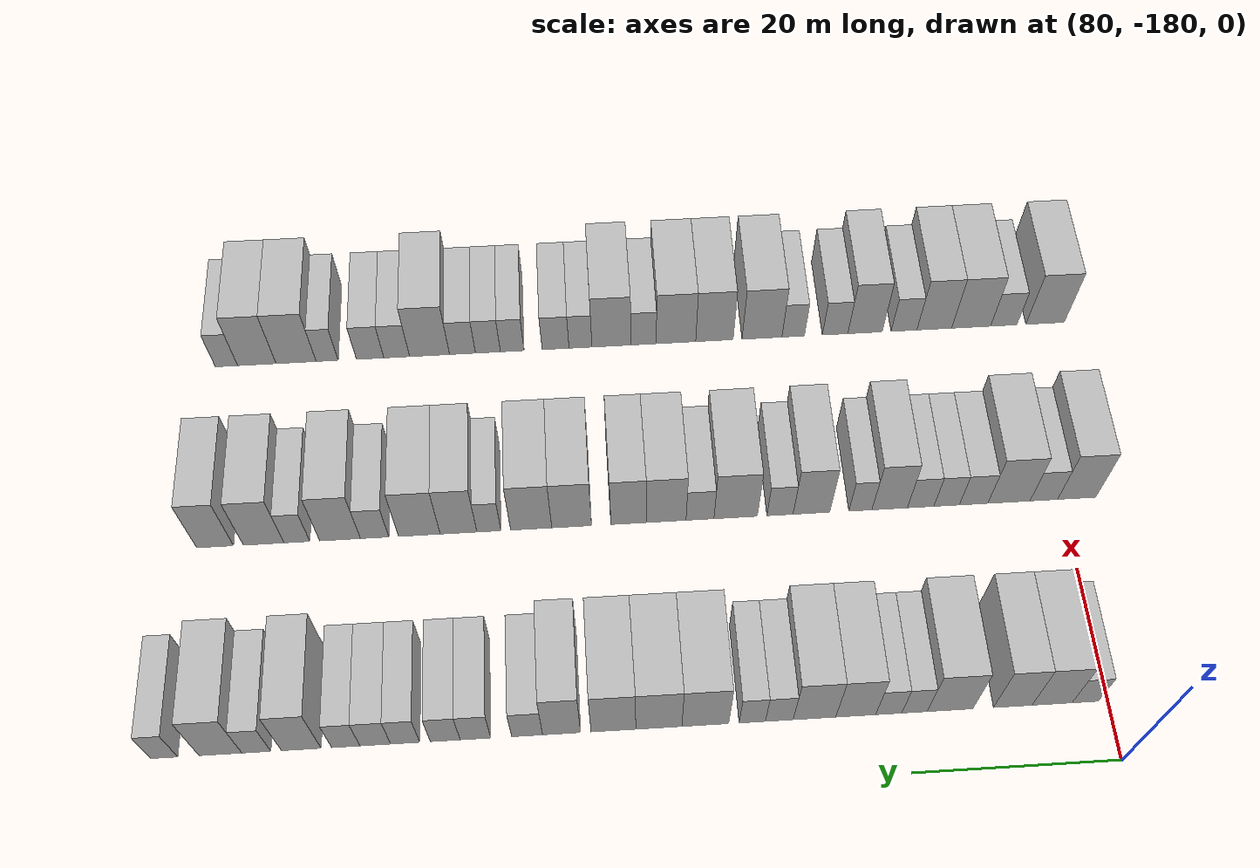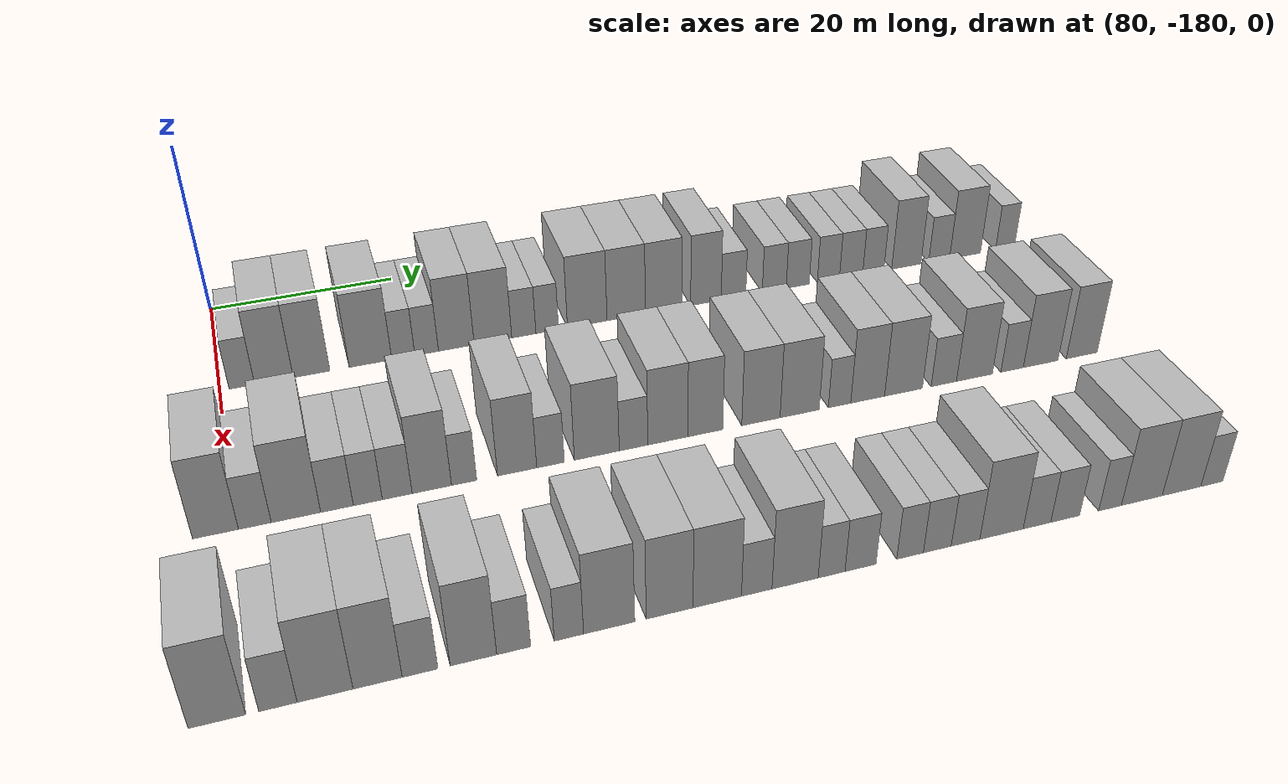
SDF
<sdf version="1.6">
 <world name="default">
  <model name="building_635">
   <static>1</static>
   <pose>91.0000 -177.7796 0 0.000000 0.000000 0.000000</pose>
   <link name="link">
    <pose>0 0 3.00 0 0 0</pose>
    <collision name="collision"><geometry><box><size>10.0000 2.5590 6.0000</size></box></geometry></collision>
    <visual name="visual">
     <cast_shadows>0</cast_shadows>
     <geometry><box><size>10.0000 2.5590 6.0000</size></box></geometry>
     <material>
      <script>
       <uri>model://HANNAS_wall/materials/scripts</uri>
       <uri>model://HANNAS_wall/materials/textures</uri>
       <name>vrc/HANNAS_wall</name>
      </script>
     </material>
    </visual>
   </link>
  </model>
  <model name="building_636">
   <static>1</static>
   <pose>91.0000 -174.5470 0 0.000000 0.000000 0.000000</pose>
   <link name="link">
    <pose>0 0 4.50 0 0 0</pose>
    <collision name="collision"><geometry><box><size>10.0000 3.9061 9.0000</size></box></geometry></collision>
    <visual name="visual">
     <cast_shadows>0</cast_shadows>
     <geometry><box><size>10.0000 3.9061 9.0000</size></box></geometry>
     <material>
      <script>
       <uri>model://HANNAS_wall/materials/scripts</uri>
       <uri>model://HANNAS_wall/materials/textures</uri>
       <name>vrc/HANNAS_wall</name>
      </script>
     </material>
    </visual>
   </link>
  </model>
  <model name="building_637">
   <static>1</static>
   <pose>91.0000 -170.7109 0 0.000000 0.000000 0.000000</pose>
   <link name="link">
    <pose>0 0 4.50 0 0 0</pose>
    <collision name="collision"><geometry><box><size>10.0000 3.7660 9.0000</size></box></geometry></collision>
    <visual name="visual">
     <cast_shadows>0</cast_shadows>
     <geometry><box><size>10.0000 3.7660 9.0000</size></box></geometry>
     <material>
      <script>
       <uri>model://HANNAS_wall/materials/scripts</uri>
       <uri>model://HANNAS_wall/materials/textures</uri>
       <name>vrc/HANNAS_wall</name>
      </script>
     </material>
    </visual>
   </link>
  </model>
  <model name="building_638">
   <static>1</static>
   <pose>91.0000 -164.5962 0 0.000000 0.000000 0.000000</pose>
   <link name="link">
    <pose>0 0 4.50 0 0 0</pose>
    <collision name="collision"><geometry><box><size>10.0000 4.4635 9.0000</size></box></geometry></collision>
    <visual name="visual">
     <cast_shadows>0</cast_shadows>
     <geometry><box><size>10.0000 4.4635 9.0000</size></box></geometry>
     <material>
      <script>
       <uri>model://HANNAS_wall/materials/scripts</uri>
       <uri>model://HANNAS_wall/materials/textures</uri>
       <name>vrc/HANNAS_wall</name>
      </script>
     </material>
    </visual>
   </link>
  </model>
  <model name="building_639">
   <static>1</static>
   <pose>91.0000 -161.1391 0 0.000000 0.000000 0.000000</pose>
   <link name="link">
    <pose>0 0 3.00 0 0 0</pose>
    <collision name="collision"><geometry><box><size>10.0000 2.4507 6.0000</size></box></geometry></collision>
    <visual name="visual">
     <cast_shadows>0</cast_shadows>
     <geometry><box><size>10.0000 2.4507 6.0000</size></box></geometry>
     <material>
      <script>
       <uri>model://HANNAS_wall/materials/scripts</uri>
       <uri>model://HANNAS_wall/materials/textures</uri>
       <name>vrc/HANNAS_wall</name>
      </script>
     </material>
    </visual>
   </link>
  </model>
  <model name="building_640">
   <static>1</static>
   <pose>91.0000 -158.6519 0 0.000000 0.000000 0.000000</pose>
   <link name="link">
    <pose>0 0 3.00 0 0 0</pose>
    <collision name="collision"><geometry><box><size>10.0000 2.5236 6.0000</size></box></geometry></collision>
    <visual name="visual">
     <cast_shadows>0</cast_shadows>
     <geometry><box><size>10.0000 2.5236 6.0000</size></box></geometry>
     <material>
      <script>
       <uri>model://HANNAS_wall/materials/scripts</uri>
       <uri>model://HANNAS_wall/materials/textures</uri>
       <name>vrc/HANNAS_wall</name>
      </script>
     </material>
    </visual>
   </link>
  </model>
  <model name="building_641">
   <static>1</static>
   <pose>91.0000 -155.4589 0 0.000000 0.000000 0.000000</pose>
   <link name="link">
    <pose>0 0 4.50 0 0 0</pose>
    <collision name="collision"><geometry><box><size>10.0000 3.8624 9.0000</size></box></geometry></collision>
    <visual name="visual">
     <cast_shadows>0</cast_shadows>
     <geometry><box><size>10.0000 3.8624 9.0000</size></box></geometry>
     <material>
      <script>
       <uri>model://HANNAS_wall/materials/scripts</uri>
       <uri>model://HANNAS_wall/materials/textures</uri>
       <name>vrc/HANNAS_wall</name>
      </script>
     </material>
    </visual>
   </link>
  </model>
  <model name="building_642">
   <static>1</static>
   <pose>91.0000 -151.4703 0 0.000000 0.000000 0.000000</pose>
   <link name="link">
    <pose>0 0 4.50 0 0 0</pose>
    <collision name="collision"><geometry><box><size>10.0000 4.1150 9.0000</size></box></geometry></collision>
    <visual name="visual">
     <cast_shadows>0</cast_shadows>
     <geometry><box><size>10.0000 4.1150 9.0000</size></box></geometry>
     <material>
      <script>
       <uri>model://HANNAS_wall/materials/scripts</uri>
       <uri>model://HANNAS_wall/materials/textures</uri>
       <name>vrc/HANNAS_wall</name>
      </script>
     </material>
    </visual>
   </link>
  </model>
  <model name="building_643">
   <static>1</static>
   <pose>91.0000 -148.0745 0 0.000000 0.000000 0.000000</pose>
   <link name="link">
    <pose>0 0 3.00 0 0 0</pose>
    <collision name="collision"><geometry><box><size>10.0000 2.6766 6.0000</size></box></geometry></collision>
    <visual name="visual">
     <cast_shadows>0</cast_shadows>
     <geometry><box><size>10.0000 2.6766 6.0000</size></box></geometry>
     <material>
      <script>
       <uri>model://HANNAS_wall/materials/scripts</uri>
       <uri>model://HANNAS_wall/materials/textures</uri>
       <name>vrc/HANNAS_wall</name>
      </script>
     </material>
    </visual>
   </link>
  </model>
  <model name="building_644">
   <static>1</static>
   <pose>91.0000 -145.4713 0 0.000000 0.000000 0.000000</pose>
   <link name="link">
    <pose>0 0 3.00 0 0 0</pose>
    <collision name="collision"><geometry><box><size>10.0000 2.5298 6.0000</size></box></geometry></collision>
    <visual name="visual">
     <cast_shadows>0</cast_shadows>
     <geometry><box><size>10.0000 2.5298 6.0000</size></box></geometry>
     <material>
      <script>
       <uri>model://HANNAS_wall/materials/scripts</uri>
       <uri>model://HANNAS_wall/materials/textures</uri>
       <name>vrc/HANNAS_wall</name>
      </script>
     </material>
    </visual>
   </link>
  </model>
  <model name="building_645">
   <static>1</static>
   <pose>91.0000 -140.9569 0 0.000000 0.000000 0.000000</pose>
   <link name="link">
    <pose>0 0 4.50 0 0 0</pose>
    <collision name="collision"><geometry><box><size>10.0000 4.4990 9.0000</size></box></geometry></collision>
    <visual name="visual">
     <cast_shadows>0</cast_shadows>
     <geometry><box><size>10.0000 4.4990 9.0000</size></box></geometry>
     <material>
      <script>
       <uri>model://HANNAS_wall/materials/scripts</uri>
       <uri>model://HANNAS_wall/materials/textures</uri>
       <name>vrc/HANNAS_wall</name>
      </script>
     </material>
    </visual>
   </link>
  </model>
  <model name="building_646">
   <static>1</static>
   <pose>91.0000 -136.4942 0 0.000000 0.000000 0.000000</pose>
   <link name="link">
    <pose>0 0 4.50 0 0 0</pose>
    <collision name="collision"><geometry><box><size>10.0000 4.4262 9.0000</size></box></geometry></collision>
    <visual name="visual">
     <cast_shadows>0</cast_shadows>
     <geometry><box><size>10.0000 4.4262 9.0000</size></box></geometry>
     <material>
      <script>
       <uri>model://HANNAS_wall/materials/scripts</uri>
       <uri>model://HANNAS_wall/materials/textures</uri>
       <name>vrc/HANNAS_wall</name>
      </script>
     </material>
    </visual>
   </link>
  </model>
  <model name="building_647">
   <static>1</static>
   <pose>91.0000 -132.1419 0 0.000000 0.000000 0.000000</pose>
   <link name="link">
    <pose>0 0 4.50 0 0 0</pose>
    <collision name="collision"><geometry><box><size>10.0000 4.2785 9.0000</size></box></geometry></collision>
    <visual name="visual">
     <cast_shadows>0</cast_shadows>
     <geometry><box><size>10.0000 4.2785 9.0000</size></box></geometry>
     <material>
      <script>
       <uri>model://HANNAS_wall/materials/scripts</uri>
       <uri>model://HANNAS_wall/materials/textures</uri>
       <name>vrc/HANNAS_wall</name>
      </script>
     </material>
    </visual>
   </link>
  </model>
  <model name="building_648">
   <static>1</static>
   <pose>91.0000 -127.1895 0 0.000000 0.000000 0.000000</pose>
   <link name="link">
    <pose>0 0 4.50 0 0 0</pose>
    <collision name="collision"><geometry><box><size>10.0000 3.6262 9.0000</size></box></geometry></collision>
    <visual name="visual">
     <cast_shadows>0</cast_shadows>
     <geometry><box><size>10.0000 3.6262 9.0000</size></box></geometry>
     <material>
      <script>
       <uri>model://HANNAS_wall/materials/scripts</uri>
       <uri>model://HANNAS_wall/materials/textures</uri>
       <name>vrc/HANNAS_wall</name>
      </script>
     </material>
    </visual>
   </link>
  </model>
  <model name="building_649">
   <static>1</static>
   <pose>91.0000 -123.9058 0 0.000000 0.000000 0.000000</pose>
   <link name="link">
    <pose>0 0 3.00 0 0 0</pose>
    <collision name="collision"><geometry><box><size>10.0000 2.9412 6.0000</size></box></geometry></collision>
    <visual name="visual">
     <cast_shadows>0</cast_shadows>
     <geometry><box><size>10.0000 2.9412 6.0000</size></box></geometry>
     <material>
      <script>
       <uri>model://HANNAS_wall/materials/scripts</uri>
       <uri>model://HANNAS_wall/materials/textures</uri>
       <name>vrc/HANNAS_wall</name>
      </script>
     </material>
    </visual>
   </link>
  </model>
  <model name="building_650">
   <static>1</static>
   <pose>91.0000 -118.9802 0 0.000000 0.000000 0.000000</pose>
   <link name="link">
    <pose>0 0 3.00 0 0 0</pose>
    <collision name="collision"><geometry><box><size>10.0000 2.9101 6.0000</size></box></geometry></collision>
    <visual name="visual">
     <cast_shadows>0</cast_shadows>
     <geometry><box><size>10.0000 2.9101 6.0000</size></box></geometry>
     <material>
      <script>
       <uri>model://HANNAS_wall/materials/scripts</uri>
       <uri>model://HANNAS_wall/materials/textures</uri>
       <name>vrc/HANNAS_wall</name>
      </script>
     </material>
    </visual>
   </link>
  </model>
  <model name="building_651">
   <static>1</static>
   <pose>91.0000 -116.1087 0 0.000000 0.000000 0.000000</pose>
   <link name="link">
    <pose>0 0 3.00 0 0 0</pose>
    <collision name="collision"><geometry><box><size>10.0000 2.8329 6.0000</size></box></geometry></collision>
    <visual name="visual">
     <cast_shadows>0</cast_shadows>
     <geometry><box><size>10.0000 2.8329 6.0000</size></box></geometry>
     <material>
      <script>
       <uri>model://HANNAS_wall/materials/scripts</uri>
       <uri>model://HANNAS_wall/materials/textures</uri>
       <name>vrc/HANNAS_wall</name>
      </script>
     </material>
    </visual>
   </link>
  </model>
  <model name="building_652">
   <static>1</static>
   <pose>91.0000 -112.3154 0 0.000000 0.000000 0.000000</pose>
   <link name="link">
    <pose>0 0 3.00 0 0 0</pose>
    <collision name="collision"><geometry><box><size>10.0000 2.7538 6.0000</size></box></geometry></collision>
    <visual name="visual">
     <cast_shadows>0</cast_shadows>
     <geometry><box><size>10.0000 2.7538 6.0000</size></box></geometry>
     <material>
      <script>
       <uri>model://HANNAS_wall/materials/scripts</uri>
       <uri>model://HANNAS_wall/materials/textures</uri>
       <name>vrc/HANNAS_wall</name>
      </script>
     </material>
    </visual>
   </link>
  </model>
  <model name="building_653">
   <static>1</static>
   <pose>91.0000 -109.4791 0 0.000000 0.000000 0.000000</pose>
   <link name="link">
    <pose>0 0 3.00 0 0 0</pose>
    <collision name="collision"><geometry><box><size>10.0000 2.9188 6.0000</size></box></geometry></collision>
    <visual name="visual">
     <cast_shadows>0</cast_shadows>
     <geometry><box><size>10.0000 2.9188 6.0000</size></box></geometry>
     <material>
      <script>
       <uri>model://HANNAS_wall/materials/scripts</uri>
       <uri>model://HANNAS_wall/materials/textures</uri>
       <name>vrc/HANNAS_wall</name>
      </script>
     </material>
    </visual>
   </link>
  </model>
  <model name="building_654">
   <static>1</static>
   <pose>91.0000 -106.6804 0 0.000000 0.000000 0.000000</pose>
   <link name="link">
    <pose>0 0 3.00 0 0 0</pose>
    <collision name="collision"><geometry><box><size>10.0000 2.6785 6.0000</size></box></geometry></collision>
    <visual name="visual">
     <cast_shadows>0</cast_shadows>
     <geometry><box><size>10.0000 2.6785 6.0000</size></box></geometry>
     <material>
      <script>
       <uri>model://HANNAS_wall/materials/scripts</uri>
       <uri>model://HANNAS_wall/materials/textures</uri>
       <name>vrc/HANNAS_wall</name>
      </script>
     </material>
    </visual>
   </link>
  </model>
  <model name="building_655">
   <static>1</static>
   <pose>91.0000 -102.4655 0 0.000000 0.000000 0.000000</pose>
   <link name="link">
    <pose>0 0 4.50 0 0 0</pose>
    <collision name="collision"><geometry><box><size>10.0000 3.7513 9.0000</size></box></geometry></collision>
    <visual name="visual">
     <cast_shadows>0</cast_shadows>
     <geometry><box><size>10.0000 3.7513 9.0000</size></box></geometry>
     <material>
      <script>
       <uri>model://HANNAS_wall/materials/scripts</uri>
       <uri>model://HANNAS_wall/materials/textures</uri>
       <name>vrc/HANNAS_wall</name>
      </script>
     </material>
    </visual>
   </link>
  </model>
  <model name="building_656">
   <static>1</static>
   <pose>91.0000 -98.2277 0 0.000000 0.000000 0.000000</pose>
   <link name="link">
    <pose>0 0 3.00 0 0 0</pose>
    <collision name="collision"><geometry><box><size>10.0000 2.7243 6.0000</size></box></geometry></collision>
    <visual name="visual">
     <cast_shadows>0</cast_shadows>
     <geometry><box><size>10.0000 2.7243 6.0000</size></box></geometry>
     <material>
      <script>
       <uri>model://HANNAS_wall/materials/scripts</uri>
       <uri>model://HANNAS_wall/materials/textures</uri>
       <name>vrc/HANNAS_wall</name>
      </script>
     </material>
    </visual>
   </link>
  </model>
  <model name="building_657">
   <static>1</static>
   <pose>91.0000 -94.8439 0 0.000000 0.000000 0.000000</pose>
   <link name="link">
    <pose>0 0 4.50 0 0 0</pose>
    <collision name="collision"><geometry><box><size>10.0000 4.0433 9.0000</size></box></geometry></collision>
    <visual name="visual">
     <cast_shadows>0</cast_shadows>
     <geometry><box><size>10.0000 4.0433 9.0000</size></box></geometry>
     <material>
      <script>
       <uri>model://HANNAS_wall/materials/scripts</uri>
       <uri>model://HANNAS_wall/materials/textures</uri>
       <name>vrc/HANNAS_wall</name>
      </script>
     </material>
    </visual>
   </link>
  </model>
  <model name="building_658">
   <static>1</static>
   <pose>91.0000 -89.5562 0 0.000000 0.000000 0.000000</pose>
   <link name="link">
    <pose>0 0 3.00 0 0 0</pose>
    <collision name="collision"><geometry><box><size>10.0000 2.5323 6.0000</size></box></geometry></collision>
    <visual name="visual">
     <cast_shadows>0</cast_shadows>
     <geometry><box><size>10.0000 2.5323 6.0000</size></box></geometry>
     <material>
      <script>
       <uri>model://HANNAS_wall/materials/scripts</uri>
       <uri>model://HANNAS_wall/materials/textures</uri>
       <name>vrc/HANNAS_wall</name>
      </script>
     </material>
    </visual>
   </link>
  </model>
  <model name="building_839">
   <static>1</static>
   <pose>113.0000 -181.5982 0 0.000000 0.000000 0.000000</pose>
   <link name="link">
    <pose>0 0 4.50 0 0 0</pose>
    <collision name="collision"><geometry><box><size>10.0000 4.0178 9.0000</size></box></geometry></collision>
    <visual name="visual">
     <cast_shadows>0</cast_shadows>
     <geometry><box><size>10.0000 4.0178 9.0000</size></box></geometry>
     <material>
      <script>
       <uri>model://HANNAS_wall/materials/scripts</uri>
       <uri>model://HANNAS_wall/materials/textures</uri>
       <name>vrc/HANNAS_wall</name>
      </script>
     </material>
    </visual>
   </link>
  </model>
  <model name="building_840">
   <static>1</static>
   <pose>113.0000 -178.1396 0 0.000000 0.000000 0.000000</pose>
   <link name="link">
    <pose>0 0 3.00 0 0 0</pose>
    <collision name="collision"><geometry><box><size>10.0000 2.8995 6.0000</size></box></geometry></collision>
    <visual name="visual">
     <cast_shadows>0</cast_shadows>
     <geometry><box><size>10.0000 2.8995 6.0000</size></box></geometry>
     <material>
      <script>
       <uri>model://HANNAS_wall/materials/scripts</uri>
       <uri>model://HANNAS_wall/materials/textures</uri>
       <name>vrc/HANNAS_wall</name>
      </script>
     </material>
    </visual>
   </link>
  </model>
  <model name="building_841">
   <static>1</static>
   <pose>113.0000 -174.4711 0 0.000000 0.000000 0.000000</pose>
   <link name="link">
    <pose>0 0 4.50 0 0 0</pose>
    <collision name="collision"><geometry><box><size>10.0000 4.4375 9.0000</size></box></geometry></collision>
    <visual name="visual">
     <cast_shadows>0</cast_shadows>
     <geometry><box><size>10.0000 4.4375 9.0000</size></box></geometry>
     <material>
      <script>
       <uri>model://HANNAS_wall/materials/scripts</uri>
       <uri>model://HANNAS_wall/materials/textures</uri>
       <name>vrc/HANNAS_wall</name>
      </script>
     </material>
    </visual>
   </link>
  </model>
  <model name="building_842">
   <static>1</static>
   <pose>113.0000 -170.7647 0 0.000000 0.000000 0.000000</pose>
   <link name="link">
    <pose>0 0 3.00 0 0 0</pose>
    <collision name="collision"><geometry><box><size>10.0000 2.9752 6.0000</size></box></geometry></collision>
    <visual name="visual">
     <cast_shadows>0</cast_shadows>
     <geometry><box><size>10.0000 2.9752 6.0000</size></box></geometry>
     <material>
      <script>
       <uri>model://HANNAS_wall/materials/scripts</uri>
       <uri>model://HANNAS_wall/materials/textures</uri>
       <name>vrc/HANNAS_wall</name>
      </script>
     </material>
    </visual>
   </link>
  </model>
  <model name="building_843">
   <static>1</static>
   <pose>113.0000 -167.9428 0 0.000000 0.000000 0.000000</pose>
   <link name="link">
    <pose>0 0 3.00 0 0 0</pose>
    <collision name="collision"><geometry><box><size>10.0000 2.6686 6.0000</size></box></geometry></collision>
    <visual name="visual">
     <cast_shadows>0</cast_shadows>
     <geometry><box><size>10.0000 2.6686 6.0000</size></box></geometry>
     <material>
      <script>
       <uri>model://HANNAS_wall/materials/scripts</uri>
       <uri>model://HANNAS_wall/materials/textures</uri>
       <name>vrc/HANNAS_wall</name>
      </script>
     </material>
    </visual>
   </link>
  </model>
  <model name="building_844">
   <static>1</static>
   <pose>113.0000 -165.2236 0 0.000000 0.000000 0.000000</pose>
   <link name="link">
    <pose>0 0 3.00 0 0 0</pose>
    <collision name="collision"><geometry><box><size>10.0000 2.7699 6.0000</size></box></geometry></collision>
    <visual name="visual">
     <cast_shadows>0</cast_shadows>
     <geometry><box><size>10.0000 2.7699 6.0000</size></box></geometry>
     <material>
      <script>
       <uri>model://HANNAS_wall/materials/scripts</uri>
       <uri>model://HANNAS_wall/materials/textures</uri>
       <name>vrc/HANNAS_wall</name>
      </script>
     </material>
    </visual>
   </link>
  </model>
  <model name="building_845">
   <static>1</static>
   <pose>113.0000 -161.9862 0 0.000000 0.000000 0.000000</pose>
   <link name="link">
    <pose>0 0 4.50 0 0 0</pose>
    <collision name="collision"><geometry><box><size>10.0000 3.7049 9.0000</size></box></geometry></collision>
    <visual name="visual">
     <cast_shadows>0</cast_shadows>
     <geometry><box><size>10.0000 3.7049 9.0000</size></box></geometry>
     <material>
      <script>
       <uri>model://HANNAS_wall/materials/scripts</uri>
       <uri>model://HANNAS_wall/materials/textures</uri>
       <name>vrc/HANNAS_wall</name>
      </script>
     </material>
    </visual>
   </link>
  </model>
  <model name="building_846">
   <static>1</static>
   <pose>113.0000 -158.9314 0 0.000000 0.000000 0.000000</pose>
   <link name="link">
    <pose>0 0 3.00 0 0 0</pose>
    <collision name="collision"><geometry><box><size>10.0000 2.4046 6.0000</size></box></geometry></collision>
    <visual name="visual">
     <cast_shadows>0</cast_shadows>
     <geometry><box><size>10.0000 2.4046 6.0000</size></box></geometry>
     <material>
      <script>
       <uri>model://HANNAS_wall/materials/scripts</uri>
       <uri>model://HANNAS_wall/materials/textures</uri>
       <name>vrc/HANNAS_wall</name>
      </script>
     </material>
    </visual>
   </link>
  </model>
  <model name="building_847">
   <static>1</static>
   <pose>113.0000 -153.8241 0 0.000000 0.000000 0.000000</pose>
   <link name="link">
    <pose>0 0 4.50 0 0 0</pose>
    <collision name="collision"><geometry><box><size>10.0000 3.8100 9.0000</size></box></geometry></collision>
    <visual name="visual">
     <cast_shadows>0</cast_shadows>
     <geometry><box><size>10.0000 3.8100 9.0000</size></box></geometry>
     <material>
      <script>
       <uri>model://HANNAS_wall/materials/scripts</uri>
       <uri>model://HANNAS_wall/materials/textures</uri>
       <name>vrc/HANNAS_wall</name>
      </script>
     </material>
    </visual>
   </link>
  </model>
  <model name="building_848">
   <static>1</static>
   <pose>113.0000 -150.5628 0 0.000000 0.000000 0.000000</pose>
   <link name="link">
    <pose>0 0 3.00 0 0 0</pose>
    <collision name="collision"><geometry><box><size>10.0000 2.7127 6.0000</size></box></geometry></collision>
    <visual name="visual">
     <cast_shadows>0</cast_shadows>
     <geometry><box><size>10.0000 2.7127 6.0000</size></box></geometry>
     <material>
      <script>
       <uri>model://HANNAS_wall/materials/scripts</uri>
       <uri>model://HANNAS_wall/materials/textures</uri>
       <name>vrc/HANNAS_wall</name>
      </script>
     </material>
    </visual>
   </link>
  </model>
  <model name="building_849">
   <static>1</static>
   <pose>113.0000 -145.9597 0 0.000000 0.000000 0.000000</pose>
   <link name="link">
    <pose>0 0 4.50 0 0 0</pose>
    <collision name="collision"><geometry><box><size>10.0000 4.4935 9.0000</size></box></geometry></collision>
    <visual name="visual">
     <cast_shadows>0</cast_shadows>
     <geometry><box><size>10.0000 4.4935 9.0000</size></box></geometry>
     <material>
      <script>
       <uri>model://HANNAS_wall/materials/scripts</uri>
       <uri>model://HANNAS_wall/materials/textures</uri>
       <name>vrc/HANNAS_wall</name>
      </script>
     </material>
    </visual>
   </link>
  </model>
  <model name="building_850">
   <static>1</static>
   <pose>113.0000 -142.2644 0 0.000000 0.000000 0.000000</pose>
   <link name="link">
    <pose>0 0 3.00 0 0 0</pose>
    <collision name="collision"><geometry><box><size>10.0000 2.8971 6.0000</size></box></geometry></collision>
    <visual name="visual">
     <cast_shadows>0</cast_shadows>
     <geometry><box><size>10.0000 2.8971 6.0000</size></box></geometry>
     <material>
      <script>
       <uri>model://HANNAS_wall/materials/scripts</uri>
       <uri>model://HANNAS_wall/materials/textures</uri>
       <name>vrc/HANNAS_wall</name>
      </script>
     </material>
    </visual>
   </link>
  </model>
  <model name="building_851">
   <static>1</static>
   <pose>113.0000 -138.7556 0 0.000000 0.000000 0.000000</pose>
   <link name="link">
    <pose>0 0 4.50 0 0 0</pose>
    <collision name="collision"><geometry><box><size>10.0000 4.1206 9.0000</size></box></geometry></collision>
    <visual name="visual">
     <cast_shadows>0</cast_shadows>
     <geometry><box><size>10.0000 4.1206 9.0000</size></box></geometry>
     <material>
      <script>
       <uri>model://HANNAS_wall/materials/scripts</uri>
       <uri>model://HANNAS_wall/materials/textures</uri>
       <name>vrc/HANNAS_wall</name>
      </script>
     </material>
    </visual>
   </link>
  </model>
  <model name="building_852">
   <static>1</static>
   <pose>113.0000 -134.8762 0 0.000000 0.000000 0.000000</pose>
   <link name="link">
    <pose>0 0 4.50 0 0 0</pose>
    <collision name="collision"><geometry><box><size>10.0000 3.6383 9.0000</size></box></geometry></collision>
    <visual name="visual">
     <cast_shadows>0</cast_shadows>
     <geometry><box><size>10.0000 3.6383 9.0000</size></box></geometry>
     <material>
      <script>
       <uri>model://HANNAS_wall/materials/scripts</uri>
       <uri>model://HANNAS_wall/materials/textures</uri>
       <name>vrc/HANNAS_wall</name>
      </script>
     </material>
    </visual>
   </link>
  </model>
  <model name="building_853">
   <static>1</static>
   <pose>113.0000 -129.0151 0 0.000000 0.000000 0.000000</pose>
   <link name="link">
    <pose>0 0 4.50 0 0 0</pose>
    <collision name="collision"><geometry><box><size>10.0000 4.0839 9.0000</size></box></geometry></collision>
    <visual name="visual">
     <cast_shadows>0</cast_shadows>
     <geometry><box><size>10.0000 4.0839 9.0000</size></box></geometry>
     <material>
      <script>
       <uri>model://HANNAS_wall/materials/scripts</uri>
       <uri>model://HANNAS_wall/materials/textures</uri>
       <name>vrc/HANNAS_wall</name>
      </script>
     </material>
    </visual>
   </link>
  </model>
  <model name="building_854">
   <static>1</static>
   <pose>113.0000 -124.8573 0 0.000000 0.000000 0.000000</pose>
   <link name="link">
    <pose>0 0 4.50 0 0 0</pose>
    <collision name="collision"><geometry><box><size>10.0000 4.2317 9.0000</size></box></geometry></collision>
    <visual name="visual">
     <cast_shadows>0</cast_shadows>
     <geometry><box><size>10.0000 4.2317 9.0000</size></box></geometry>
     <material>
      <script>
       <uri>model://HANNAS_wall/materials/scripts</uri>
       <uri>model://HANNAS_wall/materials/textures</uri>
       <name>vrc/HANNAS_wall</name>
      </script>
     </material>
    </visual>
   </link>
  </model>
  <model name="building_855">
   <static>1</static>
   <pose>113.0000 -120.5105 0 0.000000 0.000000 0.000000</pose>
   <link name="link">
    <pose>0 0 3.00 0 0 0</pose>
    <collision name="collision"><geometry><box><size>10.0000 2.4619 6.0000</size></box></geometry></collision>
    <visual name="visual">
     <cast_shadows>0</cast_shadows>
     <geometry><box><size>10.0000 2.4619 6.0000</size></box></geometry>
     <material>
      <script>
       <uri>model://HANNAS_wall/materials/scripts</uri>
       <uri>model://HANNAS_wall/materials/textures</uri>
       <name>vrc/HANNAS_wall</name>
      </script>
     </material>
    </visual>
   </link>
  </model>
  <model name="building_856">
   <static>1</static>
   <pose>113.0000 -117.3986 0 0.000000 0.000000 0.000000</pose>
   <link name="link">
    <pose>0 0 4.50 0 0 0</pose>
    <collision name="collision"><geometry><box><size>10.0000 3.7617 9.0000</size></box></geometry></collision>
    <visual name="visual">
     <cast_shadows>0</cast_shadows>
     <geometry><box><size>10.0000 3.7617 9.0000</size></box></geometry>
     <material>
      <script>
       <uri>model://HANNAS_wall/materials/scripts</uri>
       <uri>model://HANNAS_wall/materials/textures</uri>
       <name>vrc/HANNAS_wall</name>
      </script>
     </material>
    </visual>
   </link>
  </model>
  <model name="building_857">
   <static>1</static>
   <pose>113.0000 -113.3894 0 0.000000 0.000000 0.000000</pose>
   <link name="link">
    <pose>0 0 4.50 0 0 0</pose>
    <collision name="collision"><geometry><box><size>10.0000 4.2567 9.0000</size></box></geometry></collision>
    <visual name="visual">
     <cast_shadows>0</cast_shadows>
     <geometry><box><size>10.0000 4.2567 9.0000</size></box></geometry>
     <material>
      <script>
       <uri>model://HANNAS_wall/materials/scripts</uri>
       <uri>model://HANNAS_wall/materials/textures</uri>
       <name>vrc/HANNAS_wall</name>
      </script>
     </material>
    </visual>
   </link>
  </model>
  <model name="building_858">
   <static>1</static>
   <pose>113.0000 -108.8099 0 0.000000 0.000000 0.000000</pose>
   <link name="link">
    <pose>0 0 3.00 0 0 0</pose>
    <collision name="collision"><geometry><box><size>10.0000 2.9022 6.0000</size></box></geometry></collision>
    <visual name="visual">
     <cast_shadows>0</cast_shadows>
     <geometry><box><size>10.0000 2.9022 6.0000</size></box></geometry>
     <material>
      <script>
       <uri>model://HANNAS_wall/materials/scripts</uri>
       <uri>model://HANNAS_wall/materials/textures</uri>
       <name>vrc/HANNAS_wall</name>
      </script>
     </material>
    </visual>
   </link>
  </model>
  <model name="building_859">
   <static>1</static>
   <pose>113.0000 -105.2810 0 0.000000 0.000000 0.000000</pose>
   <link name="link">
    <pose>0 0 4.50 0 0 0</pose>
    <collision name="collision"><geometry><box><size>10.0000 4.1557 9.0000</size></box></geometry></collision>
    <visual name="visual">
     <cast_shadows>0</cast_shadows>
     <geometry><box><size>10.0000 4.1557 9.0000</size></box></geometry>
     <material>
      <script>
       <uri>model://HANNAS_wall/materials/scripts</uri>
       <uri>model://HANNAS_wall/materials/textures</uri>
       <name>vrc/HANNAS_wall</name>
      </script>
     </material>
    </visual>
   </link>
  </model>
  <model name="building_860">
   <static>1</static>
   <pose>113.0000 -100.8794 0 0.000000 0.000000 0.000000</pose>
   <link name="link">
    <pose>0 0 3.00 0 0 0</pose>
    <collision name="collision"><geometry><box><size>10.0000 2.6475 6.0000</size></box></geometry></collision>
    <visual name="visual">
     <cast_shadows>0</cast_shadows>
     <geometry><box><size>10.0000 2.6475 6.0000</size></box></geometry>
     <material>
      <script>
       <uri>model://HANNAS_wall/materials/scripts</uri>
       <uri>model://HANNAS_wall/materials/textures</uri>
       <name>vrc/HANNAS_wall</name>
      </script>
     </material>
    </visual>
   </link>
  </model>
  <model name="building_861">
   <static>1</static>
   <pose>113.0000 -97.4943 0 0.000000 0.000000 0.000000</pose>
   <link name="link">
    <pose>0 0 4.50 0 0 0</pose>
    <collision name="collision"><geometry><box><size>10.0000 4.1227 9.0000</size></box></geometry></collision>
    <visual name="visual">
     <cast_shadows>0</cast_shadows>
     <geometry><box><size>10.0000 4.1227 9.0000</size></box></geometry>
     <material>
      <script>
       <uri>model://HANNAS_wall/materials/scripts</uri>
       <uri>model://HANNAS_wall/materials/textures</uri>
       <name>vrc/HANNAS_wall</name>
      </script>
     </material>
    </visual>
   </link>
  </model>
  <model name="building_862">
   <static>1</static>
   <pose>113.0000 -92.5692 0 0.000000 0.000000 0.000000</pose>
   <link name="link">
    <pose>0 0 4.50 0 0 0</pose>
    <collision name="collision"><geometry><box><size>10.0000 3.7273 9.0000</size></box></geometry></collision>
    <visual name="visual">
     <cast_shadows>0</cast_shadows>
     <geometry><box><size>10.0000 3.7273 9.0000</size></box></geometry>
     <material>
      <script>
       <uri>model://HANNAS_wall/materials/scripts</uri>
       <uri>model://HANNAS_wall/materials/textures</uri>
       <name>vrc/HANNAS_wall</name>
      </script>
     </material>
    </visual>
   </link>
  </model>
  <model name="building_1026">
   <static>1</static>
   <pose>135.0000 -182.6875 0 0.000000 0.000000 0.000000</pose>
   <link name="link">
    <pose>0 0 4.50 0 0 0</pose>
    <collision name="collision"><geometry><box><size>10.0000 4.3399 9.0000</size></box></geometry></collision>
    <visual name="visual">
     <cast_shadows>0</cast_shadows>
     <geometry><box><size>10.0000 4.3399 9.0000</size></box></geometry>
     <material>
      <script>
       <uri>model://HANNAS_wall/materials/scripts</uri>
       <uri>model://HANNAS_wall/materials/textures</uri>
       <name>vrc/HANNAS_wall</name>
      </script>
     </material>
    </visual>
   </link>
  </model>
  <model name="building_1027">
   <static>1</static>
   <pose>135.0000 -178.0387 0 0.000000 0.000000 0.000000</pose>
   <link name="link">
    <pose>0 0 3.00 0 0 0</pose>
    <collision name="collision"><geometry><box><size>10.0000 2.9578 6.0000</size></box></geometry></collision>
    <visual name="visual">
     <cast_shadows>0</cast_shadows>
     <geometry><box><size>10.0000 2.9578 6.0000</size></box></geometry>
     <material>
      <script>
       <uri>model://HANNAS_wall/materials/scripts</uri>
       <uri>model://HANNAS_wall/materials/textures</uri>
       <name>vrc/HANNAS_wall</name>
      </script>
     </material>
    </visual>
   </link>
  </model>
  <model name="building_1028">
   <static>1</static>
   <pose>135.0000 -174.3787 0 0.000000 0.000000 0.000000</pose>
   <link name="link">
    <pose>0 0 4.50 0 0 0</pose>
    <collision name="collision"><geometry><box><size>10.0000 4.3621 9.0000</size></box></geometry></collision>
    <visual name="visual">
     <cast_shadows>0</cast_shadows>
     <geometry><box><size>10.0000 4.3621 9.0000</size></box></geometry>
     <material>
      <script>
       <uri>model://HANNAS_wall/materials/scripts</uri>
       <uri>model://HANNAS_wall/materials/textures</uri>
       <name>vrc/HANNAS_wall</name>
      </script>
     </material>
    </visual>
   </link>
  </model>
  <model name="building_1029">
   <static>1</static>
   <pose>135.0000 -170.2351 0 0.000000 0.000000 0.000000</pose>
   <link name="link">
    <pose>0 0 4.50 0 0 0</pose>
    <collision name="collision"><geometry><box><size>10.0000 3.9251 9.0000</size></box></geometry></collision>
    <visual name="visual">
     <cast_shadows>0</cast_shadows>
     <geometry><box><size>10.0000 3.9251 9.0000</size></box></geometry>
     <material>
      <script>
       <uri>model://HANNAS_wall/materials/scripts</uri>
       <uri>model://HANNAS_wall/materials/textures</uri>
       <name>vrc/HANNAS_wall</name>
      </script>
     </material>
    </visual>
   </link>
  </model>
  <model name="building_1030">
   <static>1</static>
   <pose>135.0000 -166.8297 0 0.000000 0.000000 0.000000</pose>
   <link name="link">
    <pose>0 0 3.00 0 0 0</pose>
    <collision name="collision"><geometry><box><size>10.0000 2.8858 6.0000</size></box></geometry></collision>
    <visual name="visual">
     <cast_shadows>0</cast_shadows>
     <geometry><box><size>10.0000 2.8858 6.0000</size></box></geometry>
     <material>
      <script>
       <uri>model://HANNAS_wall/materials/scripts</uri>
       <uri>model://HANNAS_wall/materials/textures</uri>
       <name>vrc/HANNAS_wall</name>
      </script>
     </material>
    </visual>
   </link>
  </model>
  <model name="building_1031">
   <static>1</static>
   <pose>135.0000 -162.4662 0 0.000000 0.000000 0.000000</pose>
   <link name="link">
    <pose>0 0 4.50 0 0 0</pose>
    <collision name="collision"><geometry><box><size>10.0000 3.8411 9.0000</size></box></geometry></collision>
    <visual name="visual">
     <cast_shadows>0</cast_shadows>
     <geometry><box><size>10.0000 3.8411 9.0000</size></box></geometry>
     <material>
      <script>
       <uri>model://HANNAS_wall/materials/scripts</uri>
       <uri>model://HANNAS_wall/materials/textures</uri>
       <name>vrc/HANNAS_wall</name>
      </script>
     </material>
    </visual>
   </link>
  </model>
  <model name="building_1032">
   <static>1</static>
   <pose>135.0000 -159.1240 0 0.000000 0.000000 0.000000</pose>
   <link name="link">
    <pose>0 0 3.00 0 0 0</pose>
    <collision name="collision"><geometry><box><size>10.0000 2.8434 6.0000</size></box></geometry></collision>
    <visual name="visual">
     <cast_shadows>0</cast_shadows>
     <geometry><box><size>10.0000 2.8434 6.0000</size></box></geometry>
     <material>
      <script>
       <uri>model://HANNAS_wall/materials/scripts</uri>
       <uri>model://HANNAS_wall/materials/textures</uri>
       <name>vrc/HANNAS_wall</name>
      </script>
     </material>
    </visual>
   </link>
  </model>
  <model name="building_1033">
   <static>1</static>
   <pose>135.0000 -154.4500 0 0.000000 0.000000 0.000000</pose>
   <link name="link">
    <pose>0 0 3.00 0 0 0</pose>
    <collision name="collision"><geometry><box><size>10.0000 2.5046 6.0000</size></box></geometry></collision>
    <visual name="visual">
     <cast_shadows>0</cast_shadows>
     <geometry><box><size>10.0000 2.5046 6.0000</size></box></geometry>
     <material>
      <script>
       <uri>model://HANNAS_wall/materials/scripts</uri>
       <uri>model://HANNAS_wall/materials/textures</uri>
       <name>vrc/HANNAS_wall</name>
      </script>
     </material>
    </visual>
   </link>
  </model>
  <model name="building_1034">
   <static>1</static>
   <pose>135.0000 -150.9769 0 0.000000 0.000000 0.000000</pose>
   <link name="link">
    <pose>0 0 4.50 0 0 0</pose>
    <collision name="collision"><geometry><box><size>10.0000 4.4416 9.0000</size></box></geometry></collision>
    <visual name="visual">
     <cast_shadows>0</cast_shadows>
     <geometry><box><size>10.0000 4.4416 9.0000</size></box></geometry>
     <material>
      <script>
       <uri>model://HANNAS_wall/materials/scripts</uri>
       <uri>model://HANNAS_wall/materials/textures</uri>
       <name>vrc/HANNAS_wall</name>
      </script>
     </material>
    </visual>
   </link>
  </model>
  <model name="building_1035">
   <static>1</static>
   <pose>135.0000 -145.6810 0 0.000000 0.000000 0.000000</pose>
   <link name="link">
    <pose>0 0 4.50 0 0 0</pose>
    <collision name="collision"><geometry><box><size>10.0000 4.1503 9.0000</size></box></geometry></collision>
    <visual name="visual">
     <cast_shadows>0</cast_shadows>
     <geometry><box><size>10.0000 4.1503 9.0000</size></box></geometry>
     <material>
      <script>
       <uri>model://HANNAS_wall/materials/scripts</uri>
       <uri>model://HANNAS_wall/materials/textures</uri>
       <name>vrc/HANNAS_wall</name>
      </script>
     </material>
    </visual>
   </link>
  </model>
  <model name="building_1036">
   <static>1</static>
   <pose>135.0000 -141.4157 0 0.000000 0.000000 0.000000</pose>
   <link name="link">
    <pose>0 0 4.50 0 0 0</pose>
    <collision name="collision"><geometry><box><size>10.0000 4.3801 9.0000</size></box></geometry></collision>
    <visual name="visual">
     <cast_shadows>0</cast_shadows>
     <geometry><box><size>10.0000 4.3801 9.0000</size></box></geometry>
     <material>
      <script>
       <uri>model://HANNAS_wall/materials/scripts</uri>
       <uri>model://HANNAS_wall/materials/textures</uri>
       <name>vrc/HANNAS_wall</name>
      </script>
     </material>
    </visual>
   </link>
  </model>
  <model name="building_1037">
   <static>1</static>
   <pose>135.0000 -137.8250 0 0.000000 0.000000 0.000000</pose>
   <link name="link">
    <pose>0 0 3.00 0 0 0</pose>
    <collision name="collision"><geometry><box><size>10.0000 2.8013 6.0000</size></box></geometry></collision>
    <visual name="visual">
     <cast_shadows>0</cast_shadows>
     <geometry><box><size>10.0000 2.8013 6.0000</size></box></geometry>
     <material>
      <script>
       <uri>model://HANNAS_wall/materials/scripts</uri>
       <uri>model://HANNAS_wall/materials/textures</uri>
       <name>vrc/HANNAS_wall</name>
      </script>
     </material>
    </visual>
   </link>
  </model>
  <model name="building_1038">
   <static>1</static>
   <pose>135.0000 -134.2713 0 0.000000 0.000000 0.000000</pose>
   <link name="link">
    <pose>0 0 4.50 0 0 0</pose>
    <collision name="collision"><geometry><box><size>10.0000 4.3062 9.0000</size></box></geometry></collision>
    <visual name="visual">
     <cast_shadows>0</cast_shadows>
     <geometry><box><size>10.0000 4.3062 9.0000</size></box></geometry>
     <material>
      <script>
       <uri>model://HANNAS_wall/materials/scripts</uri>
       <uri>model://HANNAS_wall/materials/textures</uri>
       <name>vrc/HANNAS_wall</name>
      </script>
     </material>
    </visual>
   </link>
  </model>
  <model name="building_1039">
   <static>1</static>
   <pose>135.0000 -130.8514 0 0.000000 0.000000 0.000000</pose>
   <link name="link">
    <pose>0 0 3.00 0 0 0</pose>
    <collision name="collision"><geometry><box><size>10.0000 2.5338 6.0000</size></box></geometry></collision>
    <visual name="visual">
     <cast_shadows>0</cast_shadows>
     <geometry><box><size>10.0000 2.5338 6.0000</size></box></geometry>
     <material>
      <script>
       <uri>model://HANNAS_wall/materials/scripts</uri>
       <uri>model://HANNAS_wall/materials/textures</uri>
       <name>vrc/HANNAS_wall</name>
      </script>
     </material>
    </visual>
   </link>
  </model>
  <model name="building_1040">
   <static>1</static>
   <pose>135.0000 -128.1038 0 0.000000 0.000000 0.000000</pose>
   <link name="link">
    <pose>0 0 3.00 0 0 0</pose>
    <collision name="collision"><geometry><box><size>10.0000 2.9613 6.0000</size></box></geometry></collision>
    <visual name="visual">
     <cast_shadows>0</cast_shadows>
     <geometry><box><size>10.0000 2.9613 6.0000</size></box></geometry>
     <material>
      <script>
       <uri>model://HANNAS_wall/materials/scripts</uri>
       <uri>model://HANNAS_wall/materials/textures</uri>
       <name>vrc/HANNAS_wall</name>
      </script>
     </material>
    </visual>
   </link>
  </model>
  <model name="building_1041">
   <static>1</static>
   <pose>135.0000 -123.3238 0 0.000000 0.000000 0.000000</pose>
   <link name="link">
    <pose>0 0 3.00 0 0 0</pose>
    <collision name="collision"><geometry><box><size>10.0000 2.5988 6.0000</size></box></geometry></collision>
    <visual name="visual">
     <cast_shadows>0</cast_shadows>
     <geometry><box><size>10.0000 2.5988 6.0000</size></box></geometry>
     <material>
      <script>
       <uri>model://HANNAS_wall/materials/scripts</uri>
       <uri>model://HANNAS_wall/materials/textures</uri>
       <name>vrc/HANNAS_wall</name>
      </script>
     </material>
    </visual>
   </link>
  </model>
  <model name="building_1042">
   <static>1</static>
   <pose>135.0000 -120.6526 0 0.000000 0.000000 0.000000</pose>
   <link name="link">
    <pose>0 0 3.00 0 0 0</pose>
    <collision name="collision"><geometry><box><size>10.0000 2.7435 6.0000</size></box></geometry></collision>
    <visual name="visual">
     <cast_shadows>0</cast_shadows>
     <geometry><box><size>10.0000 2.7435 6.0000</size></box></geometry>
     <material>
      <script>
       <uri>model://HANNAS_wall/materials/scripts</uri>
       <uri>model://HANNAS_wall/materials/textures</uri>
       <name>vrc/HANNAS_wall</name>
      </script>
     </material>
    </visual>
   </link>
  </model>
  <model name="building_1043">
   <static>1</static>
   <pose>135.0000 -117.8542 0 0.000000 0.000000 0.000000</pose>
   <link name="link">
    <pose>0 0 3.00 0 0 0</pose>
    <collision name="collision"><geometry><box><size>10.0000 2.8533 6.0000</size></box></geometry></collision>
    <visual name="visual">
     <cast_shadows>0</cast_shadows>
     <geometry><box><size>10.0000 2.8533 6.0000</size></box></geometry>
     <material>
      <script>
       <uri>model://HANNAS_wall/materials/scripts</uri>
       <uri>model://HANNAS_wall/materials/textures</uri>
       <name>vrc/HANNAS_wall</name>
      </script>
     </material>
    </visual>
   </link>
  </model>
  <model name="building_1044">
   <static>1</static>
   <pose>135.0000 -114.2340 0 0.000000 0.000000 0.000000</pose>
   <link name="link">
    <pose>0 0 4.50 0 0 0</pose>
    <collision name="collision"><geometry><box><size>10.0000 4.3872 9.0000</size></box></geometry></collision>
    <visual name="visual">
     <cast_shadows>0</cast_shadows>
     <geometry><box><size>10.0000 4.3872 9.0000</size></box></geometry>
     <material>
      <script>
       <uri>model://HANNAS_wall/materials/scripts</uri>
       <uri>model://HANNAS_wall/materials/textures</uri>
       <name>vrc/HANNAS_wall</name>
      </script>
     </material>
    </visual>
   </link>
  </model>
  <model name="building_1045">
   <static>1</static>
   <pose>135.0000 -110.6295 0 0.000000 0.000000 0.000000</pose>
   <link name="link">
    <pose>0 0 3.00 0 0 0</pose>
    <collision name="collision"><geometry><box><size>10.0000 2.8218 6.0000</size></box></geometry></collision>
    <visual name="visual">
     <cast_shadows>0</cast_shadows>
     <geometry><box><size>10.0000 2.8218 6.0000</size></box></geometry>
     <material>
      <script>
       <uri>model://HANNAS_wall/materials/scripts</uri>
       <uri>model://HANNAS_wall/materials/textures</uri>
       <name>vrc/HANNAS_wall</name>
      </script>
     </material>
    </visual>
   </link>
  </model>
  <model name="building_1046">
   <static>1</static>
   <pose>135.0000 -107.7207 0 0.000000 0.000000 0.000000</pose>
   <link name="link">
    <pose>0 0 3.00 0 0 0</pose>
    <collision name="collision"><geometry><box><size>10.0000 2.9957 6.0000</size></box></geometry></collision>
    <visual name="visual">
     <cast_shadows>0</cast_shadows>
     <geometry><box><size>10.0000 2.9957 6.0000</size></box></geometry>
     <material>
      <script>
       <uri>model://HANNAS_wall/materials/scripts</uri>
       <uri>model://HANNAS_wall/materials/textures</uri>
       <name>vrc/HANNAS_wall</name>
      </script>
     </material>
    </visual>
   </link>
  </model>
  <model name="building_1047">
   <static>1</static>
   <pose>135.0000 -103.0200 0 0.000000 0.000000 0.000000</pose>
   <link name="link">
    <pose>0 0 3.00 0 0 0</pose>
    <collision name="collision"><geometry><box><size>10.0000 2.4058 6.0000</size></box></geometry></collision>
    <visual name="visual">
     <cast_shadows>0</cast_shadows>
     <geometry><box><size>10.0000 2.4058 6.0000</size></box></geometry>
     <material>
      <script>
       <uri>model://HANNAS_wall/materials/scripts</uri>
       <uri>model://HANNAS_wall/materials/textures</uri>
       <name>vrc/HANNAS_wall</name>
      </script>
     </material>
    </visual>
   </link>
  </model>
  <model name="building_1048">
   <static>1</static>
   <pose>135.0000 -99.6306 0 0.000000 0.000000 0.000000</pose>
   <link name="link">
    <pose>0 0 4.50 0 0 0</pose>
    <collision name="collision"><geometry><box><size>10.0000 4.3729 9.0000</size></box></geometry></collision>
    <visual name="visual">
     <cast_shadows>0</cast_shadows>
     <geometry><box><size>10.0000 4.3729 9.0000</size></box></geometry>
     <material>
      <script>
       <uri>model://HANNAS_wall/materials/scripts</uri>
       <uri>model://HANNAS_wall/materials/textures</uri>
       <name>vrc/HANNAS_wall</name>
      </script>
     </material>
    </visual>
   </link>
  </model>
  <model name="building_1049">
   <static>1</static>
   <pose>135.0000 -95.3447 0 0.000000 0.000000 0.000000</pose>
   <link name="link">
    <pose>0 0 4.50 0 0 0</pose>
    <collision name="collision"><geometry><box><size>10.0000 4.1989 9.0000</size></box></geometry></collision>
    <visual name="visual">
     <cast_shadows>0</cast_shadows>
     <geometry><box><size>10.0000 4.1989 9.0000</size></box></geometry>
     <material>
      <script>
       <uri>model://HANNAS_wall/materials/scripts</uri>
       <uri>model://HANNAS_wall/materials/textures</uri>
       <name>vrc/HANNAS_wall</name>
      </script>
     </material>
    </visual>
   </link>
  </model>
  <model name="building_1050">
   <static>1</static>
   <pose>135.0000 -92.0354 0 0.000000 0.000000 0.000000</pose>
   <link name="link">
    <pose>0 0 3.00 0 0 0</pose>
    <collision name="collision"><geometry><box><size>10.0000 2.4197 6.0000</size></box></geometry></collision>
    <visual name="visual">
     <cast_shadows>0</cast_shadows>
     <geometry><box><size>10.0000 2.4197 6.0000</size></box></geometry>
     <material>
      <script>
       <uri>model://HANNAS_wall/materials/scripts</uri>
       <uri>model://HANNAS_wall/materials/textures</uri>
       <name>vrc/HANNAS_wall</name>
      </script>
     </material>
    </visual>
   </link>
  </model>
 </world>
</sdf>
